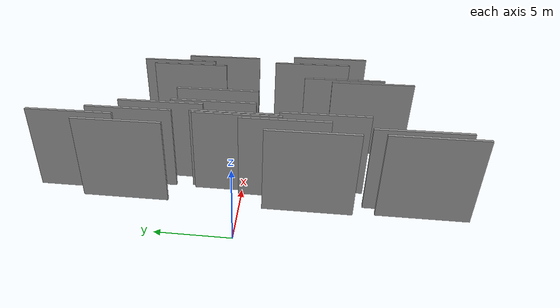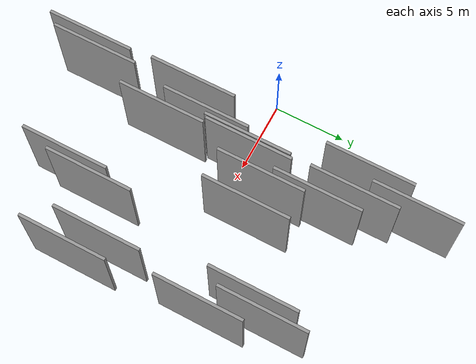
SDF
<sdf version="1.6">
 <world name="default">
  <scene>
   <sky><clouds><speed>12</speed></clouds></sky>
   <ambient>0.4 0.4 0.4 1</ambient>
   <background>0.7 0.7 0.7 1</background>
   <shadows>1</shadows>
  </scene>
  <gravity>0 0 -9.8066</gravity>
  <magnetic_field>6e-06 2.3e-05 -4.2e-05</magnetic_field>
  <physics default="0" name="default_physics" type="ode">
   <ode>
    <solver>
     <type>quick</type>
     <iters>10</iters>
     <sor>1.0</sor>
     <use_dynamic_moi_rescaling>0</use_dynamic_moi_rescaling>
    </solver>
    <constraints>
     <cfm>0</cfm>
     <erp>0.2</erp>
     <contact_max_correcting_vel>100</contact_max_correcting_vel>
     <contact_surface_layer>0.001</contact_surface_layer>
    </constraints>
   </ode>
   <max_step_size>0.004</max_step_size>
   <real_time_factor>1</real_time_factor>
   <real_time_update_rate>250</real_time_update_rate>
  </physics>
  <light name="sun" type="directional">
   <pose>0 0 10 0 0 0</pose>
   <diffuse>0.8 0.8 0.8 1</diffuse>
   <specular>0.2 0.2 0.2 1</specular>
   <attenuation>
    <range>1000</range>
    <constant>0.9</constant>
    <linear>0.01</linear>
    <quadratic>0.001</quadratic>
   </attenuation>
   <direction>-0.5 0.1 -0.9</direction>
  </light>
  <model name="grey_wall_1">
   <static>1</static>
   <pose>15.6665 2.7397 0.0 0.000000 0.000000 1.570796</pose>
   <link name="link">
    <pose>0 0 3.00 0 0 0</pose>
    <collision name="collision"><geometry><box><size>6.00 0.2 6.00</size></box></geometry></collision>
    <visual name="visual">
     <cast_shadows>0</cast_shadows>
     <geometry><box><size>6.00 0.2 6.00</size></box></geometry>
     <material>
      <script>
       <uri>model://grey_wall/materials/scripts</uri>
       <uri>model://grey_wall/materials/textures</uri>
       <name>vrc/grey_wall</name>
      </script>
     </material>
    </visual>
   </link>
  </model>
  <model name="grey_wall_2">
   <static>1</static>
   <pose>3.2226 -4.5265 0.0 0.000000 0.000000 1.570796</pose>
   <link name="link">
    <pose>0 0 3.00 0 0 0</pose>
    <collision name="collision"><geometry><box><size>6.00 0.2 6.00</size></box></geometry></collision>
    <visual name="visual">
     <cast_shadows>0</cast_shadows>
     <geometry><box><size>6.00 0.2 6.00</size></box></geometry>
     <material>
      <script>
       <uri>model://grey_wall/materials/scripts</uri>
       <uri>model://grey_wall/materials/textures</uri>
       <name>vrc/grey_wall</name>
      </script>
     </material>
    </visual>
   </link>
  </model>
  <model name="grey_wall_3">
   <static>1</static>
   <pose>5.6988 -5.3888 0.0 0.000000 0.000000 1.570796</pose>
   <link name="link">
    <pose>0 0 3.00 0 0 0</pose>
    <collision name="collision"><geometry><box><size>6.00 0.2 6.00</size></box></geometry></collision>
    <visual name="visual">
     <cast_shadows>0</cast_shadows>
     <geometry><box><size>6.00 0.2 6.00</size></box></geometry>
     <material>
      <script>
       <uri>model://grey_wall/materials/scripts</uri>
       <uri>model://grey_wall/materials/textures</uri>
       <name>vrc/grey_wall</name>
      </script>
     </material>
    </visual>
   </link>
  </model>
  <model name="grey_wall_4">
   <static>1</static>
   <pose>3.3739 7.9354 0.0 0.000000 0.000000 1.570796</pose>
   <link name="link">
    <pose>0 0 3.00 0 0 0</pose>
    <collision name="collision"><geometry><box><size>6.00 0.2 6.00</size></box></geometry></collision>
    <visual name="visual">
     <cast_shadows>0</cast_shadows>
     <geometry><box><size>6.00 0.2 6.00</size></box></geometry>
     <material>
      <script>
       <uri>model://grey_wall/materials/scripts</uri>
       <uri>model://grey_wall/materials/textures</uri>
       <name>vrc/grey_wall</name>
      </script>
     </material>
    </visual>
   </link>
  </model>
  <model name="grey_wall_5">
   <static>1</static>
   <pose>13.6999 5.3078 0.0 0.000000 0.000000 1.570796</pose>
   <link name="link">
    <pose>0 0 3.00 0 0 0</pose>
    <collision name="collision"><geometry><box><size>6.00 0.2 6.00</size></box></geometry></collision>
    <visual name="visual">
     <cast_shadows>0</cast_shadows>
     <geometry><box><size>6.00 0.2 6.00</size></box></geometry>
     <material>
      <script>
       <uri>model://grey_wall/materials/scripts</uri>
       <uri>model://grey_wall/materials/textures</uri>
       <name>vrc/grey_wall</name>
      </script>
     </material>
    </visual>
   </link>
  </model>
  <model name="grey_wall_6">
   <static>1</static>
   <pose>14.5180 6.3491 0.0 0.000000 0.000000 1.570796</pose>
   <link name="link">
    <pose>0 0 3.00 0 0 0</pose>
    <collision name="collision"><geometry><box><size>6.00 0.2 6.00</size></box></geometry></collision>
    <visual name="visual">
     <cast_shadows>0</cast_shadows>
     <geometry><box><size>6.00 0.2 6.00</size></box></geometry>
     <material>
      <script>
       <uri>model://grey_wall/materials/scripts</uri>
       <uri>model://grey_wall/materials/textures</uri>
       <name>vrc/grey_wall</name>
      </script>
     </material>
    </visual>
   </link>
  </model>
  <model name="grey_wall_7">
   <static>1</static>
   <pose>4.6879 -2.7760 0.0 0.000000 0.000000 1.570796</pose>
   <link name="link">
    <pose>0 0 3.00 0 0 0</pose>
    <collision name="collision"><geometry><box><size>6.00 0.2 6.00</size></box></geometry></collision>
    <visual name="visual">
     <cast_shadows>0</cast_shadows>
     <geometry><box><size>6.00 0.2 6.00</size></box></geometry>
     <material>
      <script>
       <uri>model://grey_wall/materials/scripts</uri>
       <uri>model://grey_wall/materials/textures</uri>
       <name>vrc/grey_wall</name>
      </script>
     </material>
    </visual>
   </link>
  </model>
  <model name="grey_wall_8">
   <static>1</static>
   <pose>3.3909 -11.9687 0.0 0.000000 0.000000 1.570796</pose>
   <link name="link">
    <pose>0 0 3.00 0 0 0</pose>
    <collision name="collision"><geometry><box><size>6.00 0.2 6.00</size></box></geometry></collision>
    <visual name="visual">
     <cast_shadows>0</cast_shadows>
     <geometry><box><size>6.00 0.2 6.00</size></box></geometry>
     <material>
      <script>
       <uri>model://grey_wall/materials/scripts</uri>
       <uri>model://grey_wall/materials/textures</uri>
       <name>vrc/grey_wall</name>
      </script>
     </material>
    </visual>
   </link>
  </model>
  <model name="grey_wall_9">
   <static>1</static>
   <pose>5.1061 0.3719 0.0 0.000000 0.000000 1.570796</pose>
   <link name="link">
    <pose>0 0 3.00 0 0 0</pose>
    <collision name="collision"><geometry><box><size>6.00 0.2 6.00</size></box></geometry></collision>
    <visual name="visual">
     <cast_shadows>0</cast_shadows>
     <geometry><box><size>6.00 0.2 6.00</size></box></geometry>
     <material>
      <script>
       <uri>model://grey_wall/materials/scripts</uri>
       <uri>model://grey_wall/materials/textures</uri>
       <name>vrc/grey_wall</name>
      </script>
     </material>
    </visual>
   </link>
  </model>
  <model name="grey_wall_10">
   <static>1</static>
   <pose>8.8644 2.2515 0.0 0.000000 0.000000 1.570796</pose>
   <link name="link">
    <pose>0 0 3.00 0 0 0</pose>
    <collision name="collision"><geometry><box><size>6.00 0.2 6.00</size></box></geometry></collision>
    <visual name="visual">
     <cast_shadows>0</cast_shadows>
     <geometry><box><size>6.00 0.2 6.00</size></box></geometry>
     <material>
      <script>
       <uri>model://grey_wall/materials/scripts</uri>
       <uri>model://grey_wall/materials/textures</uri>
       <name>vrc/grey_wall</name>
      </script>
     </material>
    </visual>
   </link>
  </model>
  <model name="grey_wall_11">
   <static>1</static>
   <pose>6.8777 2.2278 0.0 0.000000 0.000000 1.570796</pose>
   <link name="link">
    <pose>0 0 3.00 0 0 0</pose>
    <collision name="collision"><geometry><box><size>6.00 0.2 6.00</size></box></geometry></collision>
    <visual name="visual">
     <cast_shadows>0</cast_shadows>
     <geometry><box><size>6.00 0.2 6.00</size></box></geometry>
     <material>
      <script>
       <uri>model://grey_wall/materials/scripts</uri>
       <uri>model://grey_wall/materials/textures</uri>
       <name>vrc/grey_wall</name>
      </script>
     </material>
    </visual>
   </link>
  </model>
  <model name="grey_wall_12">
   <static>1</static>
   <pose>11.1920 -9.0818 0.0 0.000000 0.000000 1.570796</pose>
   <link name="link">
    <pose>0 0 3.00 0 0 0</pose>
    <collision name="collision"><geometry><box><size>6.00 0.2 6.00</size></box></geometry></collision>
    <visual name="visual">
     <cast_shadows>0</cast_shadows>
     <geometry><box><size>6.00 0.2 6.00</size></box></geometry>
     <material>
      <script>
       <uri>model://grey_wall/materials/scripts</uri>
       <uri>model://grey_wall/materials/textures</uri>
       <name>vrc/grey_wall</name>
      </script>
     </material>
    </visual>
   </link>
  </model>
  <model name="grey_wall_13">
   <static>1</static>
   <pose>4.1003 -11.2304 0.0 0.000000 0.000000 1.570796</pose>
   <link name="link">
    <pose>0 0 3.00 0 0 0</pose>
    <collision name="collision"><geometry><box><size>6.00 0.2 6.00</size></box></geometry></collision>
    <visual name="visual">
     <cast_shadows>0</cast_shadows>
     <geometry><box><size>6.00 0.2 6.00</size></box></geometry>
     <material>
      <script>
       <uri>model://grey_wall/materials/scripts</uri>
       <uri>model://grey_wall/materials/textures</uri>
       <name>vrc/grey_wall</name>
      </script>
     </material>
    </visual>
   </link>
  </model>
  <model name="grey_wall_14">
   <static>1</static>
   <pose>5.3544 0.5801 0.0 0.000000 0.000000 1.570796</pose>
   <link name="link">
    <pose>0 0 3.00 0 0 0</pose>
    <collision name="collision"><geometry><box><size>6.00 0.2 6.00</size></box></geometry></collision>
    <visual name="visual">
     <cast_shadows>0</cast_shadows>
     <geometry><box><size>6.00 0.2 6.00</size></box></geometry>
     <material>
      <script>
       <uri>model://grey_wall/materials/scripts</uri>
       <uri>model://grey_wall/materials/textures</uri>
       <name>vrc/grey_wall</name>
      </script>
     </material>
    </visual>
   </link>
  </model>
  <model name="grey_wall_15">
   <static>1</static>
   <pose>14.7792 -4.6461 0.0 0.000000 0.000000 1.570796</pose>
   <link name="link">
    <pose>0 0 3.00 0 0 0</pose>
    <collision name="collision"><geometry><box><size>6.00 0.2 6.00</size></box></geometry></collision>
    <visual name="visual">
     <cast_shadows>0</cast_shadows>
     <geometry><box><size>6.00 0.2 6.00</size></box></geometry>
     <material>
      <script>
       <uri>model://grey_wall/materials/scripts</uri>
       <uri>model://grey_wall/materials/textures</uri>
       <name>vrc/grey_wall</name>
      </script>
     </material>
    </visual>
   </link>
  </model>
  <model name="grey_wall_16">
   <static>1</static>
   <pose>16.2441 -6.1256 0.0 0.000000 0.000000 1.570796</pose>
   <link name="link">
    <pose>0 0 3.00 0 0 0</pose>
    <collision name="collision"><geometry><box><size>6.00 0.2 6.00</size></box></geometry></collision>
    <visual name="visual">
     <cast_shadows>0</cast_shadows>
     <geometry><box><size>6.00 0.2 6.00</size></box></geometry>
     <material>
      <script>
       <uri>model://grey_wall/materials/scripts</uri>
       <uri>model://grey_wall/materials/textures</uri>
       <name>vrc/grey_wall</name>
      </script>
     </material>
    </visual>
   </link>
  </model>
  <model name="grey_wall_17">
   <static>1</static>
   <pose>11.7557 -7.0398 0.0 0.000000 0.000000 1.570796</pose>
   <link name="link">
    <pose>0 0 3.00 0 0 0</pose>
    <collision name="collision"><geometry><box><size>6.00 0.2 6.00</size></box></geometry></collision>
    <visual name="visual">
     <cast_shadows>0</cast_shadows>
     <geometry><box><size>6.00 0.2 6.00</size></box></geometry>
     <material>
      <script>
       <uri>model://grey_wall/materials/scripts</uri>
       <uri>model://grey_wall/materials/textures</uri>
       <name>vrc/grey_wall</name>
      </script>
     </material>
    </visual>
   </link>
  </model>
  <model name="grey_wall_18">
   <static>1</static>
   <pose>6.3844 5.8419 0.0 0.000000 0.000000 1.570796</pose>
   <link name="link">
    <pose>0 0 3.00 0 0 0</pose>
    <collision name="collision"><geometry><box><size>6.00 0.2 6.00</size></box></geometry></collision>
    <visual name="visual">
     <cast_shadows>0</cast_shadows>
     <geometry><box><size>6.00 0.2 6.00</size></box></geometry>
     <material>
      <script>
       <uri>model://grey_wall/materials/scripts</uri>
       <uri>model://grey_wall/materials/textures</uri>
       <name>vrc/grey_wall</name>
      </script>
     </material>
    </visual>
   </link>
  </model>
  <model name="grey_wall_19">
   <static>1</static>
   <pose>5.1841 7.7561 0.0 0.000000 0.000000 1.570796</pose>
   <link name="link">
    <pose>0 0 3.00 0 0 0</pose>
    <collision name="collision"><geometry><box><size>6.00 0.2 6.00</size></box></geometry></collision>
    <visual name="visual">
     <cast_shadows>0</cast_shadows>
     <geometry><box><size>6.00 0.2 6.00</size></box></geometry>
     <material>
      <script>
       <uri>model://grey_wall/materials/scripts</uri>
       <uri>model://grey_wall/materials/textures</uri>
       <name>vrc/grey_wall</name>
      </script>
     </material>
    </visual>
   </link>
  </model>
  <model name="grey_wall_20">
   <static>1</static>
   <pose>4.3158 11.5151 0.0 0.000000 0.000000 1.570796</pose>
   <link name="link">
    <pose>0 0 3.00 0 0 0</pose>
    <collision name="collision"><geometry><box><size>6.00 0.2 6.00</size></box></geometry></collision>
    <visual name="visual">
     <cast_shadows>0</cast_shadows>
     <geometry><box><size>6.00 0.2 6.00</size></box></geometry>
     <material>
      <script>
       <uri>model://grey_wall/materials/scripts</uri>
       <uri>model://grey_wall/materials/textures</uri>
       <name>vrc/grey_wall</name>
      </script>
     </material>
    </visual>
   </link>
  </model>
 </world>
</sdf>
